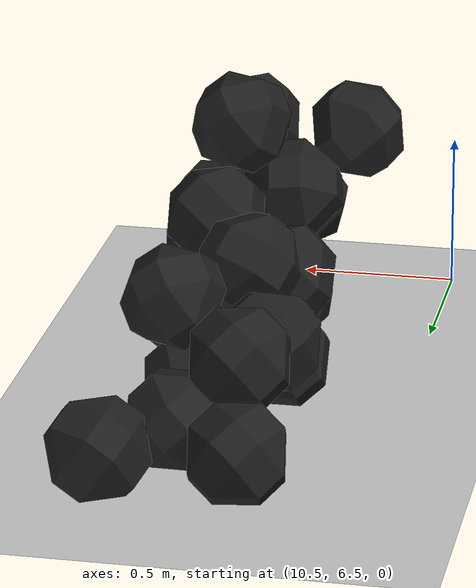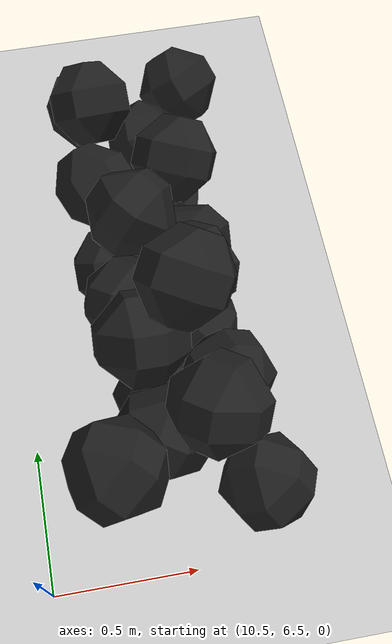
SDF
<sdf version="1.6">
 <world name="default">
  <model name="ground_plane">
   <static>1</static>
   <link name="link">
    <collision name="collision">
     <geometry><plane><normal>0 0 1</normal><size>100 100</size></plane></geometry>
     <surface><friction><ode><mu>100</mu><mu2>50</mu2></ode></friction></surface>
    </collision>
    <visual name="visual">
     <cast_shadows>0</cast_shadows>
     <geometry><plane><normal>0 0 1</normal><size>100 100</size></plane></geometry>
     <material>
      <script><uri>file://media/materials/scripts/gazebo.material</uri><name>Gazebo/Grey</name></script>
     </material>
    </visual>
   </link>
  </model>
  <model name="haoduomiantiaa_0">
   <link name="link_0">
    <inertial>
     <mass>0.2</mass>
     <inertia>
      <ixx>0.166667</ixx>
      <ixy>0</ixy>
      <ixz>0</ixz>
      <iyy>0.166667</iyy>
      <iyz>0</iyz>
      <izz>0.166667</izz>
     </inertia>
    </inertial>
    <visual name="visual">
     <geometry>
      <mesh>
       <uri>/home/oliver/catkin_ws/src/pudong_gazebo/world/stl/haoduomianti.stl</uri>
       <scale>1 1 1</scale>
      </mesh>
     </geometry>
     <material>
      <lighting>1</lighting>
      <script><uri>file://media/materials/scripts/gazebo.material</uri><name>Gazebo/Black</name></script>
      <shader type="pixel"><normal_map>__default__</normal_map></shader>
      <ambient>0.3 0.3 0.3 1</ambient>
      <diffuse>0.7 0.7 0.7 1</diffuse>
      <specular>0.01 0.01 0.01 1</specular>
      <emissive>0 0 0 1</emissive>
     </material>
    </visual>
    <collision name="collision">
     <geometry>
      <mesh>
       <uri>/home/oliver/catkin_ws/src/pudong_gazebo/world/stl/haoduomianti.stl</uri>
       <scale>1 1 1</scale>
      </mesh>
     </geometry>
     <surface>
      <friction>
       <ode><mu>1</mu><mu2>1</mu2><fdir1>0 0 0</fdir1><slip1>0</slip1><slip2>0</slip2></ode>
       <torsional>
        <coefficient>1</coefficient>
        <patch_radius>0</patch_radius>
        <surface_radius>0</surface_radius>
        <use_patch_radius>1</use_patch_radius>
        <ode><slip>0</slip></ode>
       </torsional>
      </friction>
      <bounce><restitution_coefficient>0</restitution_coefficient><threshold>1e+06</threshold></bounce>
      <contact>
       <collide_without_contact>0</collide_without_contact>
       <collide_without_contact_bitmask>1</collide_without_contact_bitmask>
       <collide_bitmask>1</collide_bitmask>
       <ode>
        <soft_cfm>0</soft_cfm>
        <soft_erp>0.2</soft_erp>
        <kp>1e+13</kp>
        <kd>1</kd>
        <max_vel>0.01</max_vel>
        <min_depth>0</min_depth>
       </ode>
       <bullet>
        <split_impulse>1</split_impulse>
        <split_impulse_penetration_threshold>-0.01</split_impulse_penetration_threshold>
        <soft_cfm>0</soft_cfm>
        <soft_erp>0.2</soft_erp>
        <kp>1e+13</kp>
        <kd>1</kd>
       </bullet>
      </contact>
     </surface>
    </collision>
   </link>
   <static>0</static>
   <pose>10.9618 7.08552 -0.115307 0.783602 -0.61526 -1.24045</pose>
  </model>
  <model name="haoduomiantiaa_17">
   <link name="link_0">
    <inertial>
     <mass>0.2</mass>
     <inertia>
      <ixx>0.166667</ixx>
      <ixy>0</ixy>
      <ixz>0</ixz>
      <iyy>0.166667</iyy>
      <iyz>0</iyz>
      <izz>0.166667</izz>
     </inertia>
    </inertial>
    <visual name="visual">
     <geometry>
      <mesh>
       <uri>/home/oliver/catkin_ws/src/pudong_gazebo/world/stl/haoduomianti.stl</uri>
       <scale>1 1 1</scale>
      </mesh>
     </geometry>
     <material>
      <lighting>1</lighting>
      <script><uri>file://media/materials/scripts/gazebo.material</uri><name>Gazebo/Black</name></script>
      <shader type="pixel"><normal_map>__default__</normal_map></shader>
      <ambient>0.3 0.3 0.3 1</ambient>
      <diffuse>0.7 0.7 0.7 1</diffuse>
      <specular>0.01 0.01 0.01 1</specular>
      <emissive>0 0 0 1</emissive>
     </material>
    </visual>
    <collision name="collision">
     <geometry>
      <mesh>
       <uri>/home/oliver/catkin_ws/src/pudong_gazebo/world/stl/haoduomianti.stl</uri>
       <scale>1 1 1</scale>
      </mesh>
     </geometry>
     <surface>
      <friction>
       <ode><mu>1</mu><mu2>1</mu2><fdir1>0 0 0</fdir1><slip1>0</slip1><slip2>0</slip2></ode>
       <torsional>
        <coefficient>1</coefficient>
        <patch_radius>0</patch_radius>
        <surface_radius>0</surface_radius>
        <use_patch_radius>1</use_patch_radius>
        <ode><slip>0</slip></ode>
       </torsional>
      </friction>
      <bounce><restitution_coefficient>0</restitution_coefficient><threshold>1e+06</threshold></bounce>
      <contact>
       <collide_without_contact>0</collide_without_contact>
       <collide_without_contact_bitmask>1</collide_without_contact_bitmask>
       <collide_bitmask>1</collide_bitmask>
       <ode>
        <soft_cfm>0</soft_cfm>
        <soft_erp>0.2</soft_erp>
        <kp>1e+13</kp>
        <kd>1</kd>
        <max_vel>0.01</max_vel>
        <min_depth>0</min_depth>
       </ode>
       <bullet>
        <split_impulse>1</split_impulse>
        <split_impulse_penetration_threshold>-0.01</split_impulse_penetration_threshold>
        <soft_cfm>0</soft_cfm>
        <soft_erp>0.2</soft_erp>
        <kp>1e+13</kp>
        <kd>1</kd>
       </bullet>
      </contact>
     </surface>
    </collision>
   </link>
   <static>0</static>
   <pose>10.878 7.61929 -0.115458 0.785475 -0.615118 -0.513988</pose>
  </model>
  <model name="haoduomiantiaa_18">
   <link name="link_0">
    <inertial>
     <mass>0.2</mass>
     <inertia>
      <ixx>0.166667</ixx>
      <ixy>0</ixy>
      <ixz>0</ixz>
      <iyy>0.166667</iyy>
      <iyz>0</iyz>
      <izz>0.166667</izz>
     </inertia>
    </inertial>
    <visual name="visual">
     <geometry>
      <mesh>
       <uri>/home/oliver/catkin_ws/src/pudong_gazebo/world/stl/haoduomianti.stl</uri>
       <scale>1 1 1</scale>
      </mesh>
     </geometry>
     <material>
      <lighting>1</lighting>
      <script><uri>file://media/materials/scripts/gazebo.material</uri><name>Gazebo/Black</name></script>
      <shader type="pixel"><normal_map>__default__</normal_map></shader>
      <ambient>0.3 0.3 0.3 1</ambient>
      <diffuse>0.7 0.7 0.7 1</diffuse>
      <specular>0.01 0.01 0.01 1</specular>
      <emissive>0 0 0 1</emissive>
     </material>
    </visual>
    <collision name="collision">
     <geometry>
      <mesh>
       <uri>/home/oliver/catkin_ws/src/pudong_gazebo/world/stl/haoduomianti.stl</uri>
       <scale>1 1 1</scale>
      </mesh>
     </geometry>
     <surface>
      <friction>
       <ode><mu>1</mu><mu2>1</mu2><fdir1>0 0 0</fdir1><slip1>0</slip1><slip2>0</slip2></ode>
       <torsional>
        <coefficient>1</coefficient>
        <patch_radius>0</patch_radius>
        <surface_radius>0</surface_radius>
        <use_patch_radius>1</use_patch_radius>
        <ode><slip>0</slip></ode>
       </torsional>
      </friction>
      <bounce><restitution_coefficient>0</restitution_coefficient><threshold>1e+06</threshold></bounce>
      <contact>
       <collide_without_contact>0</collide_without_contact>
       <collide_without_contact_bitmask>1</collide_without_contact_bitmask>
       <collide_bitmask>1</collide_bitmask>
       <ode>
        <soft_cfm>0</soft_cfm>
        <soft_erp>0.2</soft_erp>
        <kp>1e+13</kp>
        <kd>1</kd>
        <max_vel>0.01</max_vel>
        <min_depth>0</min_depth>
       </ode>
       <bullet>
        <split_impulse>1</split_impulse>
        <split_impulse_penetration_threshold>-0.01</split_impulse_penetration_threshold>
        <soft_cfm>0</soft_cfm>
        <soft_erp>0.2</soft_erp>
        <kp>1e+13</kp>
        <kd>1</kd>
       </bullet>
      </contact>
     </surface>
    </collision>
   </link>
   <static>0</static>
   <pose>11.0718 7.70453 -0.071396 -0.000448 -0.785466 -0.220896</pose>
  </model>
  <model name="haoduomiantiaa_20">
   <link name="link_0">
    <inertial>
     <mass>0.2</mass>
     <inertia>
      <ixx>0.166667</ixx>
      <ixy>0</ixy>
      <ixz>0</ixz>
      <iyy>0.166667</iyy>
      <iyz>0</iyz>
      <izz>0.166667</izz>
     </inertia>
    </inertial>
    <visual name="visual">
     <geometry>
      <mesh>
       <uri>/home/oliver/catkin_ws/src/pudong_gazebo/world/stl/haoduomianti.stl</uri>
       <scale>1 1 1</scale>
      </mesh>
     </geometry>
     <material>
      <lighting>1</lighting>
      <script><uri>file://media/materials/scripts/gazebo.material</uri><name>Gazebo/Black</name></script>
      <shader type="pixel"><normal_map>__default__</normal_map></shader>
      <ambient>0.3 0.3 0.3 1</ambient>
      <diffuse>0.7 0.7 0.7 1</diffuse>
      <specular>0.01 0.01 0.01 1</specular>
      <emissive>0 0 0 1</emissive>
     </material>
    </visual>
    <collision name="collision">
     <geometry>
      <mesh>
       <uri>/home/oliver/catkin_ws/src/pudong_gazebo/world/stl/haoduomianti.stl</uri>
       <scale>1 1 1</scale>
      </mesh>
     </geometry>
     <surface>
      <friction>
       <ode><mu>1</mu><mu2>1</mu2><fdir1>0 0 0</fdir1><slip1>0</slip1><slip2>0</slip2></ode>
       <torsional>
        <coefficient>1</coefficient>
        <patch_radius>0</patch_radius>
        <surface_radius>0</surface_radius>
        <use_patch_radius>1</use_patch_radius>
        <ode><slip>0</slip></ode>
       </torsional>
      </friction>
      <bounce><restitution_coefficient>0</restitution_coefficient><threshold>1e+06</threshold></bounce>
      <contact>
       <collide_without_contact>0</collide_without_contact>
       <collide_without_contact_bitmask>1</collide_without_contact_bitmask>
       <collide_bitmask>1</collide_bitmask>
       <ode>
        <soft_cfm>0</soft_cfm>
        <soft_erp>0.2</soft_erp>
        <kp>1e+13</kp>
        <kd>1</kd>
        <max_vel>0.01</max_vel>
        <min_depth>0</min_depth>
       </ode>
       <bullet>
        <split_impulse>1</split_impulse>
        <split_impulse_penetration_threshold>-0.01</split_impulse_penetration_threshold>
        <soft_cfm>0</soft_cfm>
        <soft_erp>0.2</soft_erp>
        <kp>1e+13</kp>
        <kd>1</kd>
       </bullet>
      </contact>
     </surface>
    </collision>
   </link>
   <static>0</static>
   <pose>10.9202 7.86418 0.053812 0.687689 -0.862259 -0.092911</pose>
  </model>
  <model name="haoduomiantiaa_25">
   <link name="link_0">
    <inertial>
     <mass>0.2</mass>
     <inertia>
      <ixx>0.166667</ixx>
      <ixy>0</ixy>
      <ixz>0</ixz>
      <iyy>0.166667</iyy>
      <iyz>0</iyz>
      <izz>0.166667</izz>
     </inertia>
    </inertial>
    <visual name="visual">
     <geometry>
      <mesh>
       <uri>/home/oliver/catkin_ws/src/pudong_gazebo/world/stl/haoduomianti.stl</uri>
       <scale>1 1 1</scale>
      </mesh>
     </geometry>
     <material>
      <lighting>1</lighting>
      <script><uri>file://media/materials/scripts/gazebo.material</uri><name>Gazebo/Black</name></script>
      <shader type="pixel"><normal_map>__default__</normal_map></shader>
      <ambient>0.3 0.3 0.3 1</ambient>
      <diffuse>0.7 0.7 0.7 1</diffuse>
      <specular>0.01 0.01 0.01 1</specular>
      <emissive>0 0 0 1</emissive>
     </material>
    </visual>
    <collision name="collision">
     <geometry>
      <mesh>
       <uri>/home/oliver/catkin_ws/src/pudong_gazebo/world/stl/haoduomianti.stl</uri>
       <scale>1 1 1</scale>
      </mesh>
     </geometry>
     <surface>
      <friction>
       <ode><mu>1</mu><mu2>1</mu2><fdir1>0 0 0</fdir1><slip1>0</slip1><slip2>0</slip2></ode>
       <torsional>
        <coefficient>1</coefficient>
        <patch_radius>0</patch_radius>
        <surface_radius>0</surface_radius>
        <use_patch_radius>1</use_patch_radius>
        <ode><slip>0</slip></ode>
       </torsional>
      </friction>
      <bounce><restitution_coefficient>0</restitution_coefficient><threshold>1e+06</threshold></bounce>
      <contact>
       <collide_without_contact>0</collide_without_contact>
       <collide_without_contact_bitmask>1</collide_without_contact_bitmask>
       <collide_bitmask>1</collide_bitmask>
       <ode>
        <soft_cfm>0</soft_cfm>
        <soft_erp>0.2</soft_erp>
        <kp>1e+13</kp>
        <kd>1</kd>
        <max_vel>0.01</max_vel>
        <min_depth>0</min_depth>
       </ode>
       <bullet>
        <split_impulse>1</split_impulse>
        <split_impulse_penetration_threshold>-0.01</split_impulse_penetration_threshold>
        <soft_cfm>0</soft_cfm>
        <soft_erp>0.2</soft_erp>
        <kp>1e+13</kp>
        <kd>1</kd>
       </bullet>
      </contact>
     </surface>
    </collision>
   </link>
   <static>0</static>
   <pose>11.0846 8.05756 -0.088756 0.785345 -0.189649 1.54956</pose>
  </model>
  <model name="haoduomiantiaa_30">
   <link name="link_0">
    <inertial>
     <mass>0.2</mass>
     <inertia>
      <ixx>0.166667</ixx>
      <ixy>0</ixy>
      <ixz>0</ixz>
      <iyy>0.166667</iyy>
      <iyz>0</iyz>
      <izz>0.166667</izz>
     </inertia>
    </inertial>
    <visual name="visual">
     <geometry>
      <mesh>
       <uri>/home/oliver/catkin_ws/src/pudong_gazebo/world/stl/haoduomianti.stl</uri>
       <scale>1 1 1</scale>
      </mesh>
     </geometry>
     <material>
      <lighting>1</lighting>
      <script><uri>file://media/materials/scripts/gazebo.material</uri><name>Gazebo/Black</name></script>
      <shader type="pixel"><normal_map>__default__</normal_map></shader>
      <ambient>0.3 0.3 0.3 1</ambient>
      <diffuse>0.7 0.7 0.7 1</diffuse>
      <specular>0.01 0.01 0.01 1</specular>
      <emissive>0 0 0 1</emissive>
     </material>
    </visual>
    <collision name="collision">
     <geometry>
      <mesh>
       <uri>/home/oliver/catkin_ws/src/pudong_gazebo/world/stl/haoduomianti.stl</uri>
       <scale>1 1 1</scale>
      </mesh>
     </geometry>
     <surface>
      <friction>
       <ode><mu>1</mu><mu2>1</mu2><fdir1>0 0 0</fdir1><slip1>0</slip1><slip2>0</slip2></ode>
       <torsional>
        <coefficient>1</coefficient>
        <patch_radius>0</patch_radius>
        <surface_radius>0</surface_radius>
        <use_patch_radius>1</use_patch_radius>
        <ode><slip>0</slip></ode>
       </torsional>
      </friction>
      <bounce><restitution_coefficient>0</restitution_coefficient><threshold>1e+06</threshold></bounce>
      <contact>
       <collide_without_contact>0</collide_without_contact>
       <collide_without_contact_bitmask>1</collide_without_contact_bitmask>
       <collide_bitmask>1</collide_bitmask>
       <ode>
        <soft_cfm>0</soft_cfm>
        <soft_erp>0.2</soft_erp>
        <kp>1e+13</kp>
        <kd>1</kd>
        <max_vel>0.01</max_vel>
        <min_depth>0</min_depth>
       </ode>
       <bullet>
        <split_impulse>1</split_impulse>
        <split_impulse_penetration_threshold>-0.01</split_impulse_penetration_threshold>
        <soft_cfm>0</soft_cfm>
        <soft_erp>0.2</soft_erp>
        <kp>1e+13</kp>
        <kd>1</kd>
       </bullet>
      </contact>
     </surface>
    </collision>
   </link>
   <static>0</static>
   <pose>11.1471 7.32422 -0.115623 0.785391 -0.615072 -1.60544</pose>
  </model>
  <model name="haoduomiantiaa_32">
   <link name="link_0">
    <inertial>
     <mass>0.2</mass>
     <inertia>
      <ixx>0.166667</ixx>
      <ixy>0</ixy>
      <ixz>0</ixz>
      <iyy>0.166667</iyy>
      <iyz>0</iyz>
      <izz>0.166667</izz>
     </inertia>
    </inertial>
    <visual name="visual">
     <geometry>
      <mesh>
       <uri>/home/oliver/catkin_ws/src/pudong_gazebo/world/stl/haoduomianti.stl</uri>
       <scale>1 1 1</scale>
      </mesh>
     </geometry>
     <material>
      <lighting>1</lighting>
      <script><uri>file://media/materials/scripts/gazebo.material</uri><name>Gazebo/Black</name></script>
      <shader type="pixel"><normal_map>__default__</normal_map></shader>
      <ambient>0.3 0.3 0.3 1</ambient>
      <diffuse>0.7 0.7 0.7 1</diffuse>
      <specular>0.01 0.01 0.01 1</specular>
      <emissive>0 0 0 1</emissive>
     </material>
    </visual>
    <collision name="collision">
     <geometry>
      <mesh>
       <uri>/home/oliver/catkin_ws/src/pudong_gazebo/world/stl/haoduomianti.stl</uri>
       <scale>1 1 1</scale>
      </mesh>
     </geometry>
     <surface>
      <friction>
       <ode><mu>1</mu><mu2>1</mu2><fdir1>0 0 0</fdir1><slip1>0</slip1><slip2>0</slip2></ode>
       <torsional>
        <coefficient>1</coefficient>
        <patch_radius>0</patch_radius>
        <surface_radius>0</surface_radius>
        <use_patch_radius>1</use_patch_radius>
        <ode><slip>0</slip></ode>
       </torsional>
      </friction>
      <bounce><restitution_coefficient>0</restitution_coefficient><threshold>1e+06</threshold></bounce>
      <contact>
       <collide_without_contact>0</collide_without_contact>
       <collide_without_contact_bitmask>1</collide_without_contact_bitmask>
       <collide_bitmask>1</collide_bitmask>
       <ode>
        <soft_cfm>0</soft_cfm>
        <soft_erp>0.2</soft_erp>
        <kp>1e+13</kp>
        <kd>1</kd>
        <max_vel>0.01</max_vel>
        <min_depth>0</min_depth>
       </ode>
       <bullet>
        <split_impulse>1</split_impulse>
        <split_impulse_penetration_threshold>-0.01</split_impulse_penetration_threshold>
        <soft_cfm>0</soft_cfm>
        <soft_erp>0.2</soft_erp>
        <kp>1e+13</kp>
        <kd>1</kd>
       </bullet>
      </contact>
     </surface>
    </collision>
   </link>
   <static>0</static>
   <pose>11.2682 6.77716 0.039586 1.13841 -0.653032 -0.145366</pose>
  </model>
  <model name="haoduomiantiaa_36">
   <link name="link_0">
    <inertial>
     <mass>0.2</mass>
     <inertia>
      <ixx>0.166667</ixx>
      <ixy>0</ixy>
      <ixz>0</ixz>
      <iyy>0.166667</iyy>
      <iyz>0</iyz>
      <izz>0.166667</izz>
     </inertia>
    </inertial>
    <visual name="visual">
     <geometry>
      <mesh>
       <uri>/home/oliver/catkin_ws/src/pudong_gazebo/world/stl/haoduomianti.stl</uri>
       <scale>1 1 1</scale>
      </mesh>
     </geometry>
     <material>
      <lighting>1</lighting>
      <script><uri>file://media/materials/scripts/gazebo.material</uri><name>Gazebo/Black</name></script>
      <shader type="pixel"><normal_map>__default__</normal_map></shader>
      <ambient>0.3 0.3 0.3 1</ambient>
      <diffuse>0.7 0.7 0.7 1</diffuse>
      <specular>0.01 0.01 0.01 1</specular>
      <emissive>0 0 0 1</emissive>
     </material>
    </visual>
    <collision name="collision">
     <geometry>
      <mesh>
       <uri>/home/oliver/catkin_ws/src/pudong_gazebo/world/stl/haoduomianti.stl</uri>
       <scale>1 1 1</scale>
      </mesh>
     </geometry>
     <surface>
      <friction>
       <ode><mu>1</mu><mu2>1</mu2><fdir1>0 0 0</fdir1><slip1>0</slip1><slip2>0</slip2></ode>
       <torsional>
        <coefficient>1</coefficient>
        <patch_radius>0</patch_radius>
        <surface_radius>0</surface_radius>
        <use_patch_radius>1</use_patch_radius>
        <ode><slip>0</slip></ode>
       </torsional>
      </friction>
      <bounce><restitution_coefficient>0</restitution_coefficient><threshold>1e+06</threshold></bounce>
      <contact>
       <collide_without_contact>0</collide_without_contact>
       <collide_without_contact_bitmask>1</collide_without_contact_bitmask>
       <collide_bitmask>1</collide_bitmask>
       <ode>
        <soft_cfm>0</soft_cfm>
        <soft_erp>0.2</soft_erp>
        <kp>1e+13</kp>
        <kd>1</kd>
        <max_vel>0.01</max_vel>
        <min_depth>0</min_depth>
       </ode>
       <bullet>
        <split_impulse>1</split_impulse>
        <split_impulse_penetration_threshold>-0.01</split_impulse_penetration_threshold>
        <soft_cfm>0</soft_cfm>
        <soft_erp>0.2</soft_erp>
        <kp>1e+13</kp>
        <kd>1</kd>
       </bullet>
      </contact>
     </surface>
    </collision>
   </link>
   <static>0</static>
   <pose>10.8578 7.41452 0.076894 0.606401 -0.749408 -2.73225</pose>
  </model>
  <model name="haoduomiantiaa_47">
   <link name="link_0">
    <inertial>
     <mass>0.2</mass>
     <inertia>
      <ixx>0.166667</ixx>
      <ixy>0</ixy>
      <ixz>0</ixz>
      <iyy>0.166667</iyy>
      <iyz>0</iyz>
      <izz>0.166667</izz>
     </inertia>
    </inertial>
    <visual name="visual">
     <geometry>
      <mesh>
       <uri>/home/oliver/catkin_ws/src/pudong_gazebo/world/stl/haoduomianti.stl</uri>
       <scale>1 1 1</scale>
      </mesh>
     </geometry>
     <material>
      <lighting>1</lighting>
      <script><uri>file://media/materials/scripts/gazebo.material</uri><name>Gazebo/Black</name></script>
      <shader type="pixel"><normal_map>__default__</normal_map></shader>
      <ambient>0.3 0.3 0.3 1</ambient>
      <diffuse>0.7 0.7 0.7 1</diffuse>
      <specular>0.01 0.01 0.01 1</specular>
      <emissive>0 0 0 1</emissive>
     </material>
    </visual>
    <collision name="collision">
     <geometry>
      <mesh>
       <uri>/home/oliver/catkin_ws/src/pudong_gazebo/world/stl/haoduomianti.stl</uri>
       <scale>1 1 1</scale>
      </mesh>
     </geometry>
     <surface>
      <friction>
       <ode><mu>1</mu><mu2>1</mu2><fdir1>0 0 0</fdir1><slip1>0</slip1><slip2>0</slip2></ode>
       <torsional>
        <coefficient>1</coefficient>
        <patch_radius>0</patch_radius>
        <surface_radius>0</surface_radius>
        <use_patch_radius>1</use_patch_radius>
        <ode><slip>0</slip></ode>
       </torsional>
      </friction>
      <bounce><restitution_coefficient>0</restitution_coefficient><threshold>1e+06</threshold></bounce>
      <contact>
       <collide_without_contact>0</collide_without_contact>
       <collide_without_contact_bitmask>1</collide_without_contact_bitmask>
       <collide_bitmask>1</collide_bitmask>
       <ode>
        <soft_cfm>0</soft_cfm>
        <soft_erp>0.2</soft_erp>
        <kp>1e+13</kp>
        <kd>1</kd>
        <max_vel>0.01</max_vel>
        <min_depth>0</min_depth>
       </ode>
       <bullet>
        <split_impulse>1</split_impulse>
        <split_impulse_penetration_threshold>-0.01</split_impulse_penetration_threshold>
        <soft_cfm>0</soft_cfm>
        <soft_erp>0.2</soft_erp>
        <kp>1e+13</kp>
        <kd>1</kd>
       </bullet>
      </contact>
     </surface>
    </collision>
   </link>
   <static>0</static>
   <pose>11.2302 7.52461 0.032698 0.335722 -0.758765 0.474463</pose>
  </model>
  <model name="haoduomiantiaa_54">
   <link name="link_0">
    <inertial>
     <mass>0.2</mass>
     <inertia>
      <ixx>0.166667</ixx>
      <ixy>0</ixy>
      <ixz>0</ixz>
      <iyy>0.166667</iyy>
      <iyz>0</iyz>
      <izz>0.166667</izz>
     </inertia>
    </inertial>
    <visual name="visual">
     <geometry>
      <mesh>
       <uri>/home/oliver/catkin_ws/src/pudong_gazebo/world/stl/haoduomianti.stl</uri>
       <scale>1 1 1</scale>
      </mesh>
     </geometry>
     <material>
      <lighting>1</lighting>
      <script><uri>file://media/materials/scripts/gazebo.material</uri><name>Gazebo/Black</name></script>
      <shader type="pixel"><normal_map>__default__</normal_map></shader>
      <ambient>0.3 0.3 0.3 1</ambient>
      <diffuse>0.7 0.7 0.7 1</diffuse>
      <specular>0.01 0.01 0.01 1</specular>
      <emissive>0 0 0 1</emissive>
     </material>
    </visual>
    <collision name="collision">
     <geometry>
      <mesh>
       <uri>/home/oliver/catkin_ws/src/pudong_gazebo/world/stl/haoduomianti.stl</uri>
       <scale>1 1 1</scale>
      </mesh>
     </geometry>
     <surface>
      <friction>
       <ode><mu>1</mu><mu2>1</mu2><fdir1>0 0 0</fdir1><slip1>0</slip1><slip2>0</slip2></ode>
       <torsional>
        <coefficient>1</coefficient>
        <patch_radius>0</patch_radius>
        <surface_radius>0</surface_radius>
        <use_patch_radius>1</use_patch_radius>
        <ode><slip>0</slip></ode>
       </torsional>
      </friction>
      <bounce><restitution_coefficient>0</restitution_coefficient><threshold>1e+06</threshold></bounce>
      <contact>
       <collide_without_contact>0</collide_without_contact>
       <collide_without_contact_bitmask>1</collide_without_contact_bitmask>
       <collide_bitmask>1</collide_bitmask>
       <ode>
        <soft_cfm>0</soft_cfm>
        <soft_erp>0.2</soft_erp>
        <kp>1e+13</kp>
        <kd>1</kd>
        <max_vel>0.01</max_vel>
        <min_depth>0</min_depth>
       </ode>
       <bullet>
        <split_impulse>1</split_impulse>
        <split_impulse_penetration_threshold>-0.01</split_impulse_penetration_threshold>
        <soft_cfm>0</soft_cfm>
        <soft_erp>0.2</soft_erp>
        <kp>1e+13</kp>
        <kd>1</kd>
       </bullet>
      </contact>
     </surface>
    </collision>
   </link>
   <static>0</static>
   <pose>11.2501 7.10535 0.065921 0.687606 -0.836089 0.967881</pose>
  </model>
  <model name="haoduomiantiaa_74">
   <link name="link_0">
    <inertial>
     <mass>0.2</mass>
     <inertia>
      <ixx>0.166667</ixx>
      <ixy>0</ixy>
      <ixz>0</ixz>
      <iyy>0.166667</iyy>
      <iyz>0</iyz>
      <izz>0.166667</izz>
     </inertia>
    </inertial>
    <visual name="visual">
     <geometry>
      <mesh>
       <uri>/home/oliver/catkin_ws/src/pudong_gazebo/world/stl/haoduomianti.stl</uri>
       <scale>1 1 1</scale>
      </mesh>
     </geometry>
     <material>
      <lighting>1</lighting>
      <script><uri>file://media/materials/scripts/gazebo.material</uri><name>Gazebo/Black</name></script>
      <shader type="pixel"><normal_map>__default__</normal_map></shader>
      <ambient>0.3 0.3 0.3 1</ambient>
      <diffuse>0.7 0.7 0.7 1</diffuse>
      <specular>0.01 0.01 0.01 1</specular>
      <emissive>0 0 0 1</emissive>
     </material>
    </visual>
    <collision name="collision">
     <geometry>
      <mesh>
       <uri>/home/oliver/catkin_ws/src/pudong_gazebo/world/stl/haoduomianti.stl</uri>
       <scale>1 1 1</scale>
      </mesh>
     </geometry>
     <surface>
      <friction>
       <ode><mu>1</mu><mu2>1</mu2><fdir1>0 0 0</fdir1><slip1>0</slip1><slip2>0</slip2></ode>
       <torsional>
        <coefficient>1</coefficient>
        <patch_radius>0</patch_radius>
        <surface_radius>0</surface_radius>
        <use_patch_radius>1</use_patch_radius>
        <ode><slip>0</slip></ode>
       </torsional>
      </friction>
      <bounce><restitution_coefficient>0</restitution_coefficient><threshold>1e+06</threshold></bounce>
      <contact>
       <collide_without_contact>0</collide_without_contact>
       <collide_without_contact_bitmask>1</collide_without_contact_bitmask>
       <collide_bitmask>1</collide_bitmask>
       <ode>
        <soft_cfm>0</soft_cfm>
        <soft_erp>0.2</soft_erp>
        <kp>1e+13</kp>
        <kd>1</kd>
        <max_vel>0.01</max_vel>
        <min_depth>0</min_depth>
       </ode>
       <bullet>
        <split_impulse>1</split_impulse>
        <split_impulse_penetration_threshold>-0.01</split_impulse_penetration_threshold>
        <soft_cfm>0</soft_cfm>
        <soft_erp>0.2</soft_erp>
        <kp>1e+13</kp>
        <kd>1</kd>
       </bullet>
      </contact>
     </surface>
    </collision>
   </link>
   <static>0</static>
   <pose>11.1587 7.88407 0.167396 0.79064 -0.616928 -3.05219</pose>
  </model>
  <model name="haoduomiantiaa_91">
   <link name="link_0">
    <inertial>
     <mass>0.2</mass>
     <inertia>
      <ixx>0.166667</ixx>
      <ixy>0</ixy>
      <ixz>0</ixz>
      <iyy>0.166667</iyy>
      <iyz>0</iyz>
      <izz>0.166667</izz>
     </inertia>
    </inertial>
    <visual name="visual">
     <geometry>
      <mesh>
       <uri>/home/oliver/catkin_ws/src/pudong_gazebo/world/stl/haoduomianti.stl</uri>
       <scale>1 1 1</scale>
      </mesh>
     </geometry>
     <material>
      <lighting>1</lighting>
      <script><uri>file://media/materials/scripts/gazebo.material</uri><name>Gazebo/Black</name></script>
      <shader type="pixel"><normal_map>__default__</normal_map></shader>
      <ambient>0.3 0.3 0.3 1</ambient>
      <diffuse>0.7 0.7 0.7 1</diffuse>
      <specular>0.01 0.01 0.01 1</specular>
      <emissive>0 0 0 1</emissive>
     </material>
    </visual>
    <collision name="collision">
     <geometry>
      <mesh>
       <uri>/home/oliver/catkin_ws/src/pudong_gazebo/world/stl/haoduomianti.stl</uri>
       <scale>1 1 1</scale>
      </mesh>
     </geometry>
     <surface>
      <friction>
       <ode><mu>1</mu><mu2>1</mu2><fdir1>0 0 0</fdir1><slip1>0</slip1><slip2>0</slip2></ode>
       <torsional>
        <coefficient>1</coefficient>
        <patch_radius>0</patch_radius>
        <surface_radius>0</surface_radius>
        <use_patch_radius>1</use_patch_radius>
        <ode><slip>0</slip></ode>
       </torsional>
      </friction>
      <bounce><restitution_coefficient>0</restitution_coefficient><threshold>1e+06</threshold></bounce>
      <contact>
       <collide_without_contact>0</collide_without_contact>
       <collide_without_contact_bitmask>1</collide_without_contact_bitmask>
       <collide_bitmask>1</collide_bitmask>
       <ode>
        <soft_cfm>0</soft_cfm>
        <soft_erp>0.2</soft_erp>
        <kp>1e+13</kp>
        <kd>1</kd>
        <max_vel>0.01</max_vel>
        <min_depth>0</min_depth>
       </ode>
       <bullet>
        <split_impulse>1</split_impulse>
        <split_impulse_penetration_threshold>-0.01</split_impulse_penetration_threshold>
        <soft_cfm>0</soft_cfm>
        <soft_erp>0.2</soft_erp>
        <kp>1e+13</kp>
        <kd>1</kd>
       </bullet>
      </contact>
     </surface>
    </collision>
   </link>
   <static>0</static>
   <pose>10.8658 8.37033 -0.11546 0.785022 -0.614743 1.7225</pose>
  </model>
  <model name="haoduomiantiaa_93">
   <link name="link_0">
    <inertial>
     <mass>0.2</mass>
     <inertia>
      <ixx>0.166667</ixx>
      <ixy>0</ixy>
      <ixz>0</ixz>
      <iyy>0.166667</iyy>
      <iyz>0</iyz>
      <izz>0.166667</izz>
     </inertia>
    </inertial>
    <visual name="visual">
     <geometry>
      <mesh>
       <uri>/home/oliver/catkin_ws/src/pudong_gazebo/world/stl/haoduomianti.stl</uri>
       <scale>1 1 1</scale>
      </mesh>
     </geometry>
     <material>
      <lighting>1</lighting>
      <script><uri>file://media/materials/scripts/gazebo.material</uri><name>Gazebo/Black</name></script>
      <shader type="pixel"><normal_map>__default__</normal_map></shader>
      <ambient>0.3 0.3 0.3 1</ambient>
      <diffuse>0.7 0.7 0.7 1</diffuse>
      <specular>0.01 0.01 0.01 1</specular>
      <emissive>0 0 0 1</emissive>
     </material>
    </visual>
    <collision name="collision">
     <geometry>
      <mesh>
       <uri>/home/oliver/catkin_ws/src/pudong_gazebo/world/stl/haoduomianti.stl</uri>
       <scale>1 1 1</scale>
      </mesh>
     </geometry>
     <surface>
      <friction>
       <ode><mu>1</mu><mu2>1</mu2><fdir1>0 0 0</fdir1><slip1>0</slip1><slip2>0</slip2></ode>
       <torsional>
        <coefficient>1</coefficient>
        <patch_radius>0</patch_radius>
        <surface_radius>0</surface_radius>
        <use_patch_radius>1</use_patch_radius>
        <ode><slip>0</slip></ode>
       </torsional>
      </friction>
      <bounce><restitution_coefficient>0</restitution_coefficient><threshold>1e+06</threshold></bounce>
      <contact>
       <collide_without_contact>0</collide_without_contact>
       <collide_without_contact_bitmask>1</collide_without_contact_bitmask>
       <collide_bitmask>1</collide_bitmask>
       <ode>
        <soft_cfm>0</soft_cfm>
        <soft_erp>0.2</soft_erp>
        <kp>1e+13</kp>
        <kd>1</kd>
        <max_vel>0.01</max_vel>
        <min_depth>0</min_depth>
       </ode>
       <bullet>
        <split_impulse>1</split_impulse>
        <split_impulse_penetration_threshold>-0.01</split_impulse_penetration_threshold>
        <soft_cfm>0</soft_cfm>
        <soft_erp>0.2</soft_erp>
        <kp>1e+13</kp>
        <kd>1</kd>
       </bullet>
      </contact>
     </surface>
    </collision>
   </link>
   <static>0</static>
   <pose>11.0089 6.86214 0.149424 1.08109 -0.713136 -1.71459</pose>
  </model>
  <model name="haoduomiantiaa_96">
   <link name="link_0">
    <inertial>
     <mass>0.2</mass>
     <inertia>
      <ixx>0.166667</ixx>
      <ixy>0</ixy>
      <ixz>0</ixz>
      <iyy>0.166667</iyy>
      <iyz>0</iyz>
      <izz>0.166667</izz>
     </inertia>
    </inertial>
    <visual name="visual">
     <geometry>
      <mesh>
       <uri>/home/oliver/catkin_ws/src/pudong_gazebo/world/stl/haoduomianti.stl</uri>
       <scale>1 1 1</scale>
      </mesh>
     </geometry>
     <material>
      <lighting>1</lighting>
      <script><uri>file://media/materials/scripts/gazebo.material</uri><name>Gazebo/Black</name></script>
      <shader type="pixel"><normal_map>__default__</normal_map></shader>
      <ambient>0.3 0.3 0.3 1</ambient>
      <diffuse>0.7 0.7 0.7 1</diffuse>
      <specular>0.01 0.01 0.01 1</specular>
      <emissive>0 0 0 1</emissive>
     </material>
    </visual>
    <collision name="collision">
     <geometry>
      <mesh>
       <uri>/home/oliver/catkin_ws/src/pudong_gazebo/world/stl/haoduomianti.stl</uri>
       <scale>1 1 1</scale>
      </mesh>
     </geometry>
     <surface>
      <friction>
       <ode><mu>1</mu><mu2>1</mu2><fdir1>0 0 0</fdir1><slip1>0</slip1><slip2>0</slip2></ode>
       <torsional>
        <coefficient>1</coefficient>
        <patch_radius>0</patch_radius>
        <surface_radius>0</surface_radius>
        <use_patch_radius>1</use_patch_radius>
        <ode><slip>0</slip></ode>
       </torsional>
      </friction>
      <bounce><restitution_coefficient>0</restitution_coefficient><threshold>1e+06</threshold></bounce>
      <contact>
       <collide_without_contact>0</collide_without_contact>
       <collide_without_contact_bitmask>1</collide_without_contact_bitmask>
       <collide_bitmask>1</collide_bitmask>
       <ode>
        <soft_cfm>0</soft_cfm>
        <soft_erp>0.2</soft_erp>
        <kp>1e+13</kp>
        <kd>1</kd>
        <max_vel>0.01</max_vel>
        <min_depth>0</min_depth>
       </ode>
       <bullet>
        <split_impulse>1</split_impulse>
        <split_impulse_penetration_threshold>-0.01</split_impulse_penetration_threshold>
        <soft_cfm>0</soft_cfm>
        <soft_erp>0.2</soft_erp>
        <kp>1e+13</kp>
        <kd>1</kd>
       </bullet>
      </contact>
     </surface>
    </collision>
   </link>
   <static>0</static>
   <pose>11.0784 7.42908 0.258949 0.780969 -0.376142 -0.65565</pose>
  </model>
  <model name="haoduomiantiaa_101">
   <link name="link_0">
    <inertial>
     <mass>0.2</mass>
     <inertia>
      <ixx>0.166667</ixx>
      <ixy>0</ixy>
      <ixz>0</ixz>
      <iyy>0.166667</iyy>
      <iyz>0</iyz>
      <izz>0.166667</izz>
     </inertia>
    </inertial>
    <visual name="visual">
     <geometry>
      <mesh>
       <uri>/home/oliver/catkin_ws/src/pudong_gazebo/world/stl/haoduomianti.stl</uri>
       <scale>1 1 1</scale>
      </mesh>
     </geometry>
     <material>
      <lighting>1</lighting>
      <script><uri>file://media/materials/scripts/gazebo.material</uri><name>Gazebo/Black</name></script>
      <shader type="pixel"><normal_map>__default__</normal_map></shader>
      <ambient>0.3 0.3 0.3 1</ambient>
      <diffuse>0.7 0.7 0.7 1</diffuse>
      <specular>0.01 0.01 0.01 1</specular>
      <emissive>0 0 0 1</emissive>
     </material>
    </visual>
    <collision name="collision">
     <geometry>
      <mesh>
       <uri>/home/oliver/catkin_ws/src/pudong_gazebo/world/stl/haoduomianti.stl</uri>
       <scale>1 1 1</scale>
      </mesh>
     </geometry>
     <surface>
      <friction>
       <ode><mu>1</mu><mu2>1</mu2><fdir1>0 0 0</fdir1><slip1>0</slip1><slip2>0</slip2></ode>
       <torsional>
        <coefficient>1</coefficient>
        <patch_radius>0</patch_radius>
        <surface_radius>0</surface_radius>
        <use_patch_radius>1</use_patch_radius>
        <ode><slip>0</slip></ode>
       </torsional>
      </friction>
      <bounce><restitution_coefficient>0</restitution_coefficient><threshold>1e+06</threshold></bounce>
      <contact>
       <collide_without_contact>0</collide_without_contact>
       <collide_without_contact_bitmask>1</collide_without_contact_bitmask>
       <collide_bitmask>1</collide_bitmask>
       <ode>
        <soft_cfm>0</soft_cfm>
        <soft_erp>0.2</soft_erp>
        <kp>1e+13</kp>
        <kd>1</kd>
        <max_vel>0.01</max_vel>
        <min_depth>0</min_depth>
       </ode>
       <bullet>
        <split_impulse>1</split_impulse>
        <split_impulse_penetration_threshold>-0.01</split_impulse_penetration_threshold>
        <soft_cfm>0</soft_cfm>
        <soft_erp>0.2</soft_erp>
        <kp>1e+13</kp>
        <kd>1</kd>
       </bullet>
      </contact>
     </surface>
    </collision>
   </link>
   <static>0</static>
   <pose>11.0441 7.15348 0.305221 0.176451 -0.681378 1.50099</pose>
  </model>
  <model name="haoduomiantiaa_107">
   <link name="link_0">
    <inertial>
     <mass>0.2</mass>
     <inertia>
      <ixx>0.166667</ixx>
      <ixy>0</ixy>
      <ixz>0</ixz>
      <iyy>0.166667</iyy>
      <iyz>0</iyz>
      <izz>0.166667</izz>
     </inertia>
    </inertial>
    <visual name="visual">
     <geometry>
      <mesh>
       <uri>/home/oliver/catkin_ws/src/pudong_gazebo/world/stl/haoduomianti.stl</uri>
       <scale>1 1 1</scale>
      </mesh>
     </geometry>
     <material>
      <lighting>1</lighting>
      <script><uri>file://media/materials/scripts/gazebo.material</uri><name>Gazebo/Black</name></script>
      <shader type="pixel"><normal_map>__default__</normal_map></shader>
      <ambient>0.3 0.3 0.3 1</ambient>
      <diffuse>0.7 0.7 0.7 1</diffuse>
      <specular>0.01 0.01 0.01 1</specular>
      <emissive>0 0 0 1</emissive>
     </material>
    </visual>
    <collision name="collision">
     <geometry>
      <mesh>
       <uri>/home/oliver/catkin_ws/src/pudong_gazebo/world/stl/haoduomianti.stl</uri>
       <scale>1 1 1</scale>
      </mesh>
     </geometry>
     <surface>
      <friction>
       <ode><mu>1</mu><mu2>1</mu2><fdir1>0 0 0</fdir1><slip1>0</slip1><slip2>0</slip2></ode>
       <torsional>
        <coefficient>1</coefficient>
        <patch_radius>0</patch_radius>
        <surface_radius>0</surface_radius>
        <use_patch_radius>1</use_patch_radius>
        <ode><slip>0</slip></ode>
       </torsional>
      </friction>
      <bounce><restitution_coefficient>0</restitution_coefficient><threshold>1e+06</threshold></bounce>
      <contact>
       <collide_without_contact>0</collide_without_contact>
       <collide_without_contact_bitmask>1</collide_without_contact_bitmask>
       <collide_bitmask>1</collide_bitmask>
       <ode>
        <soft_cfm>0</soft_cfm>
        <soft_erp>0.2</soft_erp>
        <kp>1e+13</kp>
        <kd>1</kd>
        <max_vel>0.01</max_vel>
        <min_depth>0</min_depth>
       </ode>
       <bullet>
        <split_impulse>1</split_impulse>
        <split_impulse_penetration_threshold>-0.01</split_impulse_penetration_threshold>
        <soft_cfm>0</soft_cfm>
        <soft_erp>0.2</soft_erp>
        <kp>1e+13</kp>
        <kd>1</kd>
       </bullet>
      </contact>
     </surface>
    </collision>
   </link>
   <static>0</static>
   <pose>11.0299 7.58278 0.227874 1.27134 -0.805611 -2.17571</pose>
  </model>
  <model name="haoduomiantiaa_114">
   <link name="link_0">
    <inertial>
     <mass>0.2</mass>
     <inertia>
      <ixx>0.166667</ixx>
      <ixy>0</ixy>
      <ixz>0</ixz>
      <iyy>0.166667</iyy>
      <iyz>0</iyz>
      <izz>0.166667</izz>
     </inertia>
    </inertial>
    <visual name="visual">
     <geometry>
      <mesh>
       <uri>/home/oliver/catkin_ws/src/pudong_gazebo/world/stl/haoduomianti.stl</uri>
       <scale>1 1 1</scale>
      </mesh>
     </geometry>
     <material>
      <lighting>1</lighting>
      <script><uri>file://media/materials/scripts/gazebo.material</uri><name>Gazebo/Black</name></script>
      <shader type="pixel"><normal_map>__default__</normal_map></shader>
      <ambient>0.3 0.3 0.3 1</ambient>
      <diffuse>0.7 0.7 0.7 1</diffuse>
      <specular>0.01 0.01 0.01 1</specular>
      <emissive>0 0 0 1</emissive>
     </material>
    </visual>
    <collision name="collision">
     <geometry>
      <mesh>
       <uri>/home/oliver/catkin_ws/src/pudong_gazebo/world/stl/haoduomianti.stl</uri>
       <scale>1 1 1</scale>
      </mesh>
     </geometry>
     <surface>
      <friction>
       <ode><mu>1</mu><mu2>1</mu2><fdir1>0 0 0</fdir1><slip1>0</slip1><slip2>0</slip2></ode>
       <torsional>
        <coefficient>1</coefficient>
        <patch_radius>0</patch_radius>
        <surface_radius>0</surface_radius>
        <use_patch_radius>1</use_patch_radius>
        <ode><slip>0</slip></ode>
       </torsional>
      </friction>
      <bounce><restitution_coefficient>0</restitution_coefficient><threshold>1e+06</threshold></bounce>
      <contact>
       <collide_without_contact>0</collide_without_contact>
       <collide_without_contact_bitmask>1</collide_without_contact_bitmask>
       <collide_bitmask>1</collide_bitmask>
       <ode>
        <soft_cfm>0</soft_cfm>
        <soft_erp>0.2</soft_erp>
        <kp>1e+13</kp>
        <kd>1</kd>
        <max_vel>0.01</max_vel>
        <min_depth>0</min_depth>
       </ode>
       <bullet>
        <split_impulse>1</split_impulse>
        <split_impulse_penetration_threshold>-0.01</split_impulse_penetration_threshold>
        <soft_cfm>0</soft_cfm>
        <soft_erp>0.2</soft_erp>
        <kp>1e+13</kp>
        <kd>1</kd>
       </bullet>
      </contact>
     </surface>
    </collision>
   </link>
   <static>0</static>
   <pose>10.8443 6.80367 0.359346 1.02457 -0.861135 -0.010642</pose>
  </model>
  <model name="haoduomiantiaa_131">
   <link name="link_0">
    <inertial>
     <mass>0.2</mass>
     <inertia>
      <ixx>0.166667</ixx>
      <ixy>0</ixy>
      <ixz>0</ixz>
      <iyy>0.166667</iyy>
      <iyz>0</iyz>
      <izz>0.166667</izz>
     </inertia>
    </inertial>
    <visual name="visual">
     <geometry>
      <mesh>
       <uri>/home/oliver/catkin_ws/src/pudong_gazebo/world/stl/haoduomianti.stl</uri>
       <scale>1 1 1</scale>
      </mesh>
     </geometry>
     <material>
      <lighting>1</lighting>
      <script><uri>file://media/materials/scripts/gazebo.material</uri><name>Gazebo/Black</name></script>
      <shader type="pixel"><normal_map>__default__</normal_map></shader>
      <ambient>0.3 0.3 0.3 1</ambient>
      <diffuse>0.7 0.7 0.7 1</diffuse>
      <specular>0.01 0.01 0.01 1</specular>
      <emissive>0 0 0 1</emissive>
     </material>
    </visual>
    <collision name="collision">
     <geometry>
      <mesh>
       <uri>/home/oliver/catkin_ws/src/pudong_gazebo/world/stl/haoduomianti.stl</uri>
       <scale>1 1 1</scale>
      </mesh>
     </geometry>
     <surface>
      <friction>
       <ode><mu>1</mu><mu2>1</mu2><fdir1>0 0 0</fdir1><slip1>0</slip1><slip2>0</slip2></ode>
       <torsional>
        <coefficient>1</coefficient>
        <patch_radius>0</patch_radius>
        <surface_radius>0</surface_radius>
        <use_patch_radius>1</use_patch_radius>
        <ode><slip>0</slip></ode>
       </torsional>
      </friction>
      <bounce><restitution_coefficient>0</restitution_coefficient><threshold>1e+06</threshold></bounce>
      <contact>
       <collide_without_contact>0</collide_without_contact>
       <collide_without_contact_bitmask>1</collide_without_contact_bitmask>
       <collide_bitmask>1</collide_bitmask>
       <ode>
        <soft_cfm>0</soft_cfm>
        <soft_erp>0.2</soft_erp>
        <kp>1e+13</kp>
        <kd>1</kd>
        <max_vel>0.01</max_vel>
        <min_depth>0</min_depth>
       </ode>
       <bullet>
        <split_impulse>1</split_impulse>
        <split_impulse_penetration_threshold>-0.01</split_impulse_penetration_threshold>
        <soft_cfm>0</soft_cfm>
        <soft_erp>0.2</soft_erp>
        <kp>1e+13</kp>
        <kd>1</kd>
       </bullet>
      </contact>
     </surface>
    </collision>
   </link>
   <static>0</static>
   <pose>10.8739 8.21245 0.120374 0.848518 -0.612062 1.6124</pose>
  </model>
  <model name="haoduomiantiaa_147">
   <link name="link_0">
    <inertial>
     <mass>0.2</mass>
     <inertia>
      <ixx>0.166667</ixx>
      <ixy>0</ixy>
      <ixz>0</ixz>
      <iyy>0.166667</iyy>
      <iyz>0</iyz>
      <izz>0.166667</izz>
     </inertia>
    </inertial>
    <visual name="visual">
     <geometry>
      <mesh>
       <uri>/home/oliver/catkin_ws/src/pudong_gazebo/world/stl/haoduomianti.stl</uri>
       <scale>1 1 1</scale>
      </mesh>
     </geometry>
     <material>
      <lighting>1</lighting>
      <script><uri>file://media/materials/scripts/gazebo.material</uri><name>Gazebo/Black</name></script>
      <shader type="pixel"><normal_map>__default__</normal_map></shader>
      <ambient>0.3 0.3 0.3 1</ambient>
      <diffuse>0.7 0.7 0.7 1</diffuse>
      <specular>0.01 0.01 0.01 1</specular>
      <emissive>0 0 0 1</emissive>
     </material>
    </visual>
    <collision name="collision">
     <geometry>
      <mesh>
       <uri>/home/oliver/catkin_ws/src/pudong_gazebo/world/stl/haoduomianti.stl</uri>
       <scale>1 1 1</scale>
      </mesh>
     </geometry>
     <surface>
      <friction>
       <ode><mu>1</mu><mu2>1</mu2><fdir1>0 0 0</fdir1><slip1>0</slip1><slip2>0</slip2></ode>
       <torsional>
        <coefficient>1</coefficient>
        <patch_radius>0</patch_radius>
        <surface_radius>0</surface_radius>
        <use_patch_radius>1</use_patch_radius>
        <ode><slip>0</slip></ode>
       </torsional>
      </friction>
      <bounce><restitution_coefficient>0</restitution_coefficient><threshold>1e+06</threshold></bounce>
      <contact>
       <collide_without_contact>0</collide_without_contact>
       <collide_without_contact_bitmask>1</collide_without_contact_bitmask>
       <collide_bitmask>1</collide_bitmask>
       <ode>
        <soft_cfm>0</soft_cfm>
        <soft_erp>0.2</soft_erp>
        <kp>1e+13</kp>
        <kd>1</kd>
        <max_vel>0.01</max_vel>
        <min_depth>0</min_depth>
       </ode>
       <bullet>
        <split_impulse>1</split_impulse>
        <split_impulse_penetration_threshold>-0.01</split_impulse_penetration_threshold>
        <soft_cfm>0</soft_cfm>
        <soft_erp>0.2</soft_erp>
        <kp>1e+13</kp>
        <kd>1</kd>
       </bullet>
      </contact>
     </surface>
    </collision>
   </link>
   <static>0</static>
   <pose>11.2709 8.41384 -0.115465 0.785466 -0.615447 -2.09658</pose>
  </model>
  <model name="haoduomiantiaa_152">
   <link name="link_0">
    <inertial>
     <mass>0.2</mass>
     <inertia>
      <ixx>0.166667</ixx>
      <ixy>0</ixy>
      <ixz>0</ixz>
      <iyy>0.166667</iyy>
      <iyz>0</iyz>
      <izz>0.166667</izz>
     </inertia>
    </inertial>
    <visual name="visual">
     <geometry>
      <mesh>
       <uri>/home/oliver/catkin_ws/src/pudong_gazebo/world/stl/haoduomianti.stl</uri>
       <scale>1 1 1</scale>
      </mesh>
     </geometry>
     <material>
      <lighting>1</lighting>
      <script><uri>file://media/materials/scripts/gazebo.material</uri><name>Gazebo/Black</name></script>
      <shader type="pixel"><normal_map>__default__</normal_map></shader>
      <ambient>0.3 0.3 0.3 1</ambient>
      <diffuse>0.7 0.7 0.7 1</diffuse>
      <specular>0.01 0.01 0.01 1</specular>
      <emissive>0 0 0 1</emissive>
     </material>
    </visual>
    <collision name="collision">
     <geometry>
      <mesh>
       <uri>/home/oliver/catkin_ws/src/pudong_gazebo/world/stl/haoduomianti.stl</uri>
       <scale>1 1 1</scale>
      </mesh>
     </geometry>
     <surface>
      <friction>
       <ode><mu>1</mu><mu2>1</mu2><fdir1>0 0 0</fdir1><slip1>0</slip1><slip2>0</slip2></ode>
       <torsional>
        <coefficient>1</coefficient>
        <patch_radius>0</patch_radius>
        <surface_radius>0</surface_radius>
        <use_patch_radius>1</use_patch_radius>
        <ode><slip>0</slip></ode>
       </torsional>
      </friction>
      <bounce><restitution_coefficient>0</restitution_coefficient><threshold>1e+06</threshold></bounce>
      <contact>
       <collide_without_contact>0</collide_without_contact>
       <collide_without_contact_bitmask>1</collide_without_contact_bitmask>
       <collide_bitmask>1</collide_bitmask>
       <ode>
        <soft_cfm>0</soft_cfm>
        <soft_erp>0.2</soft_erp>
        <kp>1e+13</kp>
        <kd>1</kd>
        <max_vel>0.01</max_vel>
        <min_depth>0</min_depth>
       </ode>
       <bullet>
        <split_impulse>1</split_impulse>
        <split_impulse_penetration_threshold>-0.01</split_impulse_penetration_threshold>
        <soft_cfm>0</soft_cfm>
        <soft_erp>0.2</soft_erp>
        <kp>1e+13</kp>
        <kd>1</kd>
       </bullet>
      </contact>
     </surface>
    </collision>
   </link>
   <static>0</static>
   <pose>11.0492 6.9335 0.406799 1.15772 -0.759972 1.20665</pose>
  </model>
  <model name="haoduomiantiaa_197">
   <link name="link_0">
    <inertial>
     <mass>0.2</mass>
     <inertia>
      <ixx>0.166667</ixx>
      <ixy>0</ixy>
      <ixz>0</ixz>
      <iyy>0.166667</iyy>
      <iyz>0</iyz>
      <izz>0.166667</izz>
     </inertia>
    </inertial>
    <visual name="visual">
     <geometry>
      <mesh>
       <uri>/home/oliver/catkin_ws/src/pudong_gazebo/world/stl/haoduomianti.stl</uri>
       <scale>1 1 1</scale>
      </mesh>
     </geometry>
     <material>
      <lighting>1</lighting>
      <script><uri>file://media/materials/scripts/gazebo.material</uri><name>Gazebo/Black</name></script>
      <shader type="pixel"><normal_map>__default__</normal_map></shader>
      <ambient>0.3 0.3 0.3 1</ambient>
      <diffuse>0.7 0.7 0.7 1</diffuse>
      <specular>0.01 0.01 0.01 1</specular>
      <emissive>0 0 0 1</emissive>
     </material>
    </visual>
    <collision name="collision">
     <geometry>
      <mesh>
       <uri>/home/oliver/catkin_ws/src/pudong_gazebo/world/stl/haoduomianti.stl</uri>
       <scale>1 1 1</scale>
      </mesh>
     </geometry>
     <surface>
      <friction>
       <ode><mu>1</mu><mu2>1</mu2><fdir1>0 0 0</fdir1><slip1>0</slip1><slip2>0</slip2></ode>
       <torsional>
        <coefficient>1</coefficient>
        <patch_radius>0</patch_radius>
        <surface_radius>0</surface_radius>
        <use_patch_radius>1</use_patch_radius>
        <ode><slip>0</slip></ode>
       </torsional>
      </friction>
      <bounce><restitution_coefficient>0</restitution_coefficient><threshold>1e+06</threshold></bounce>
      <contact>
       <collide_without_contact>0</collide_without_contact>
       <collide_without_contact_bitmask>1</collide_without_contact_bitmask>
       <collide_bitmask>1</collide_bitmask>
       <ode>
        <soft_cfm>0</soft_cfm>
        <soft_erp>0.2</soft_erp>
        <kp>1e+13</kp>
        <kd>1</kd>
        <max_vel>0.01</max_vel>
        <min_depth>0</min_depth>
       </ode>
       <bullet>
        <split_impulse>1</split_impulse>
        <split_impulse_penetration_threshold>-0.01</split_impulse_penetration_threshold>
        <soft_cfm>0</soft_cfm>
        <soft_erp>0.2</soft_erp>
        <kp>1e+13</kp>
        <kd>1</kd>
       </bullet>
      </contact>
     </surface>
    </collision>
   </link>
   <static>0</static>
   <pose>11.0569 7.22163 0.51757 0.648742 -0.651807 -0.970855</pose>
  </model>
 </world>
</sdf>
